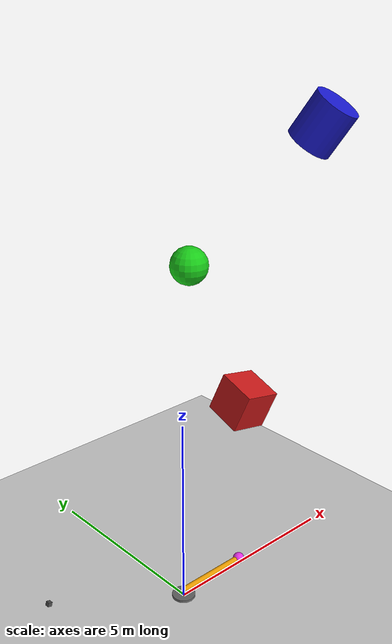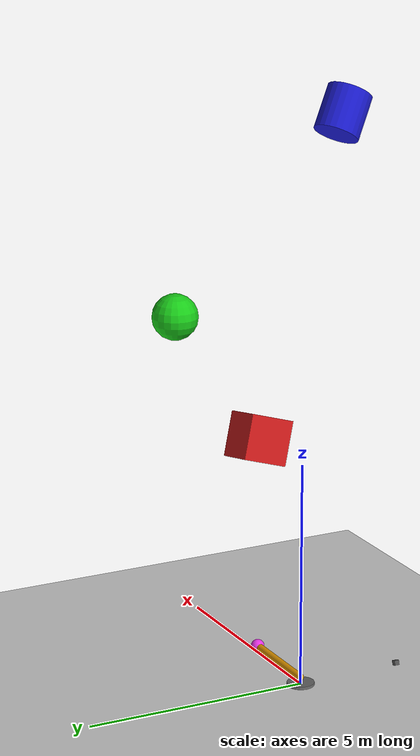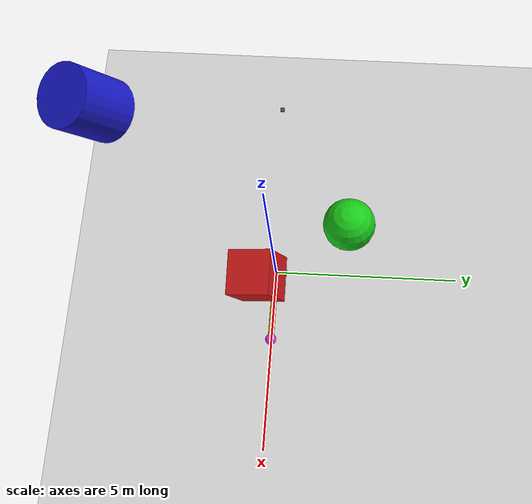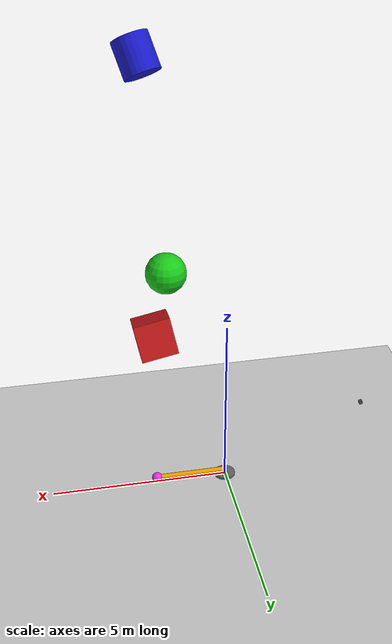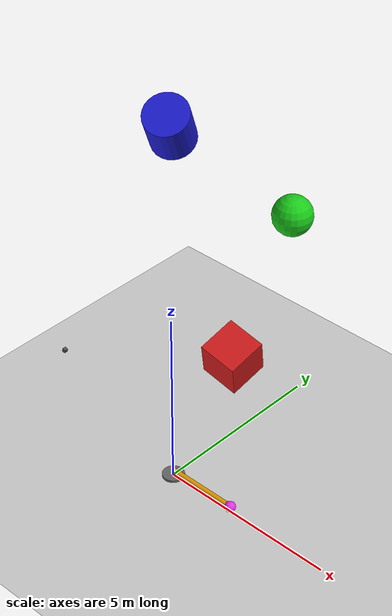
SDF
<?xml version="1.0" ?>
<sdf version="1.11">
  <world name="headless_camera">

    <physics name="1ms" type="ignored">
      <max_step_size>0.001</max_step_size>
      <real_time_factor>1.0</real_time_factor>
    </physics>

    <!-- Core system plugins -->
    <plugin
        filename="gz-sim-physics-system"
        name="gz::sim::systems::Physics">
    </plugin>
    <plugin
        filename="gz-sim-user-commands-system"
        name="gz::sim::systems::UserCommands">
    </plugin>
    <plugin
        filename="gz-sim-scene-broadcaster-system"
        name="gz::sim::systems::SceneBroadcaster">
    </plugin>

    <!-- Sensors system - required for camera rendering in headless mode -->
    <plugin
        filename="gz-sim-sensors-system"
        name="gz::sim::systems::Sensors">
      <render_engine>ogre2</render_engine>
    </plugin>

    <!-- WebSocket server - streams scene + image data to web clients -->
    <plugin
        filename="gz-sim-websocket-server-system"
        name="gz::sim::systems::WebsocketServer">
      <publication_hz>30</publication_hz>
      <port>9002</port>
      <max_connections>-1</max_connections>
    </plugin>

    <!-- Camera stream - encodes H.264 and pushes to MediaMTX via WHIP -->
    <plugin
        filename="gz-sim-camera-stream-system"
        name="gz::sim::systems::CameraStream">
      <topic>/stream/control</topic>
      <default_bitrate>4000000</default_bitrate>
      <default_fps>30</default_fps>
    </plugin>

    <!-- Scene settings -->
    <scene>
      <ambient>0.6 0.6 0.6 1.0</ambient>
      <background>0.4 0.6 0.9 1.0</background>
    </scene>

    <!-- Sun -->
    <light type="directional" name="sun">
      <cast_shadows>true</cast_shadows>
      <pose>0 0 10 0 0 0</pose>
      <diffuse>1.0 1.0 1.0 1</diffuse>
      <specular>0.5 0.5 0.5 1</specular>
      <direction>-0.5 0.1 -0.9</direction>
    </light>

    <!-- Ground plane -->
    <model name="ground_plane">
      <static>true</static>
      <link name="link">
        <collision name="collision">
          <geometry>
            <plane>
              <normal>0 0 1</normal>
              <size>100 100</size>
            </plane>
          </geometry>
        </collision>
        <visual name="visual">
          <geometry>
            <plane>
              <normal>0 0 1</normal>
              <size>100 100</size>
            </plane>
          </geometry>
          <material>
            <ambient>0.8 0.8 0.8 1</ambient>
            <diffuse>0.8 0.8 0.8 1</diffuse>
            <specular>0.8 0.8 0.8 1</specular>
          </material>
        </visual>
      </link>
    </model>

    <!-- Objects dropped from height so motion is visible -->
    <model name="red_box">
      <pose>2 0 5 0.3 0.2 0</pose>
      <link name="link">
        <inertial>
          <mass>1.0</mass>
          <inertia>
            <ixx>0.167</ixx><iyy>0.167</iyy><izz>0.167</izz>
          </inertia>
        </inertial>
        <collision name="collision">
          <geometry><box><size>1 1 1</size></box></geometry>
        </collision>
        <visual name="visual">
          <geometry><box><size>1 1 1</size></box></geometry>
          <material>
            <ambient>0.8 0.1 0.1 1</ambient>
            <diffuse>0.8 0.1 0.1 1</diffuse>
            <specular>0.8 0.1 0.1 1</specular>
          </material>
        </visual>
      </link>
    </model>

    <model name="green_sphere">
      <pose>2 2 8 0 0 0</pose>
      <link name="link">
        <inertial>
          <mass>1.0</mass>
          <inertia>
            <ixx>0.1</ixx><iyy>0.1</iyy><izz>0.1</izz>
          </inertia>
        </inertial>
        <collision name="collision">
          <geometry><sphere><radius>0.5</radius></sphere></geometry>
        </collision>
        <visual name="visual">
          <geometry><sphere><radius>0.5</radius></sphere></geometry>
          <material>
            <ambient>0.1 0.8 0.1 1</ambient>
            <diffuse>0.1 0.8 0.1 1</diffuse>
            <specular>0.1 0.8 0.1 1</specular>
          </material>
        </visual>
      </link>
    </model>

    <model name="blue_cylinder">
      <pose>2 -2 12 0.5 0.3 0</pose>
      <link name="link">
        <inertial>
          <mass>1.0</mass>
          <inertia>
            <ixx>0.146</ixx><iyy>0.146</iyy><izz>0.125</izz>
          </inertia>
        </inertial>
        <collision name="collision">
          <geometry><cylinder><radius>0.5</radius><length>1.0</length></cylinder></geometry>
        </collision>
        <visual name="visual">
          <geometry><cylinder><radius>0.5</radius><length>1.0</length></cylinder></geometry>
          <material>
            <ambient>0.1 0.1 0.8 1</ambient>
            <diffuse>0.1 0.1 0.8 1</diffuse>
            <specular>0.1 0.1 0.8 1</specular>
          </material>
        </visual>
      </link>
    </model>

    <!-- Spinning arm on a motorized joint for continuous visible motion -->
    <model name="spinner">
      <pose>0 0 0 0 0 0</pose>
      <link name="base">
        <inertial><mass>100</mass></inertial>
        <collision name="collision">
          <geometry><cylinder><radius>0.3</radius><length>0.1</length></cylinder></geometry>
        </collision>
        <visual name="visual">
          <geometry><cylinder><radius>0.3</radius><length>0.1</length></cylinder></geometry>
          <material>
            <ambient>0.4 0.4 0.4 1</ambient>
            <diffuse>0.4 0.4 0.4 1</diffuse>
          </material>
        </visual>
      </link>
      <link name="arm">
        <pose>0 0 0.15 0 0 0</pose>
        <inertial>
          <pose>1 0 0 0 0 0</pose>
          <mass>2.0</mass>
          <inertia>
            <ixx>0.01</ixx><iyy>0.67</iyy><izz>0.67</izz>
          </inertia>
        </inertial>
        <visual name="arm_visual">
          <pose>1 0 0 0 1.5708 0</pose>
          <geometry><cylinder><radius>0.08</radius><length>2.0</length></cylinder></geometry>
          <material>
            <ambient>0.9 0.6 0.0 1</ambient>
            <diffuse>0.9 0.6 0.0 1</diffuse>
            <specular>0.9 0.6 0.0 1</specular>
          </material>
        </visual>
        <visual name="tip_visual">
          <pose>2 0 0 0 0 0</pose>
          <geometry><sphere><radius>0.15</radius></sphere></geometry>
          <material>
            <ambient>0.9 0.2 0.9 1</ambient>
            <diffuse>0.9 0.2 0.9 1</diffuse>
          </material>
        </visual>
      </link>
      <joint name="spin_joint" type="revolute">
        <parent>base</parent>
        <child>arm</child>
        <axis>
          <xyz>0 0 1</xyz>
          <dynamics>
            <friction>0.0</friction>
          </dynamics>
        </axis>
      </joint>
      <plugin
          filename="gz-sim-joint-controller-system"
          name="gz::sim::systems::JointController">
        <joint_name>spin_joint</joint_name>
        <initial_velocity>2.0</initial_velocity>
      </plugin>
    </model>

    <!-- Camera model with sensor - publishes images on /camera topic -->
    <model name="camera">
      <static>true</static>
      <pose>-4 0 2.0 0 0.3 0</pose>
      <link name="link">
        <visual name="visual">
          <geometry><box><size>0.1 0.1 0.1</size></box></geometry>
          <material>
            <ambient>0.3 0.3 0.3 1</ambient>
            <diffuse>0.3 0.3 0.3 1</diffuse>
          </material>
        </visual>
        <sensor name="camera" type="camera">
          <camera>
            <horizontal_fov>1.047</horizontal_fov>
            <image>
              <width>960</width>
              <height>540</height>
            </image>
            <clip>
              <near>0.1</near>
              <far>1000</far>
            </clip>
          </camera>
          <always_on>1</always_on>
          <update_rate>30</update_rate>
          <visualize>false</visualize>
          <topic>camera</topic>
        </sensor>
      </link>
    </model>

  </world>
</sdf>
